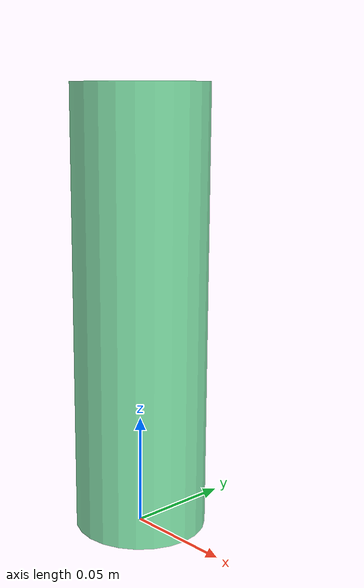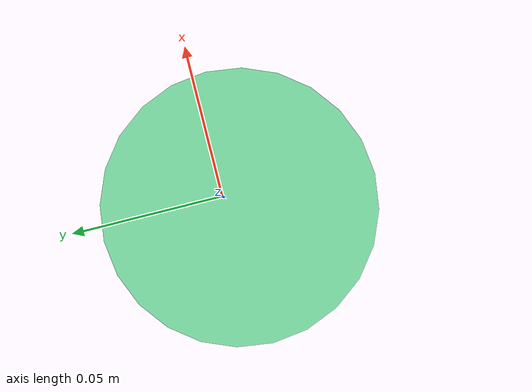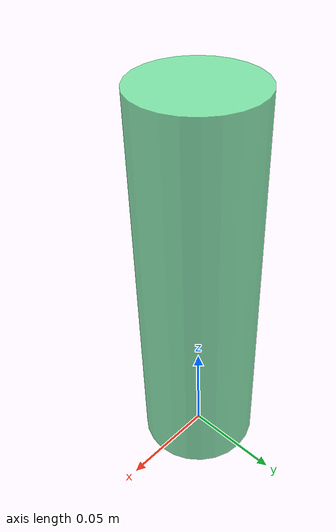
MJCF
<mujoco model="cylinder">
  <worldbody>
    <body name="body_cylinder" pos="0 0 0">
      <freejoint/>
      <geom name="geom_cylinder" type="cylinder" size="0.03 0.1" pos="0 0 0.1" rgba="0.4 0.9 0.6 0.8"/>
      <inertial pos="0 0 0" mass="1" diaginertia="0.5 0.5 0.5"/>
    </body>
  </worldbody>
</mujoco>
